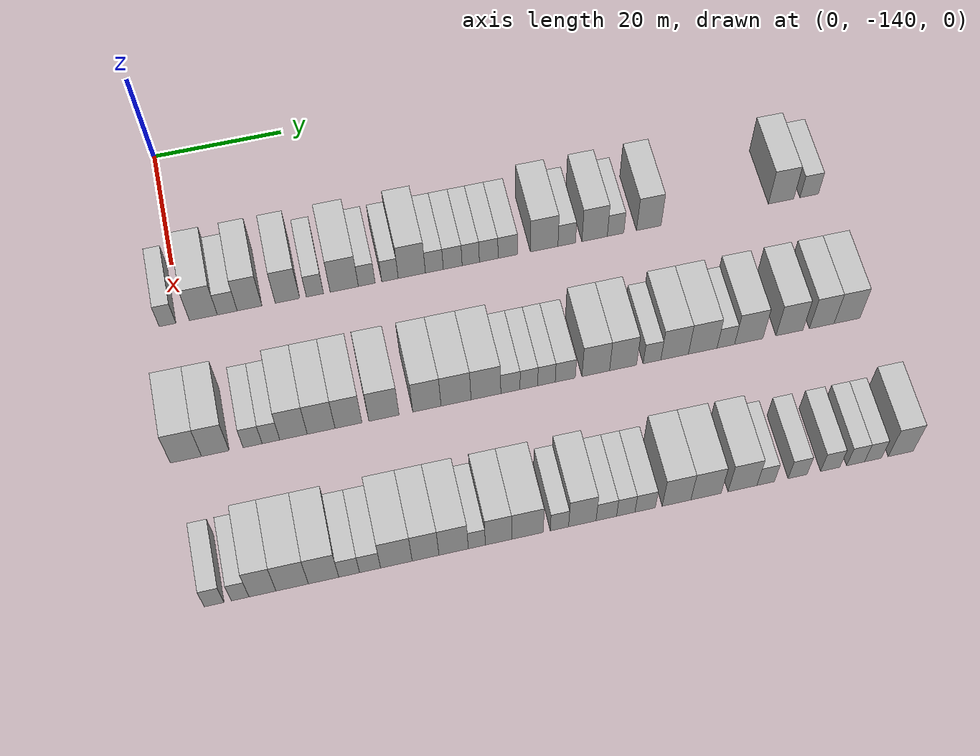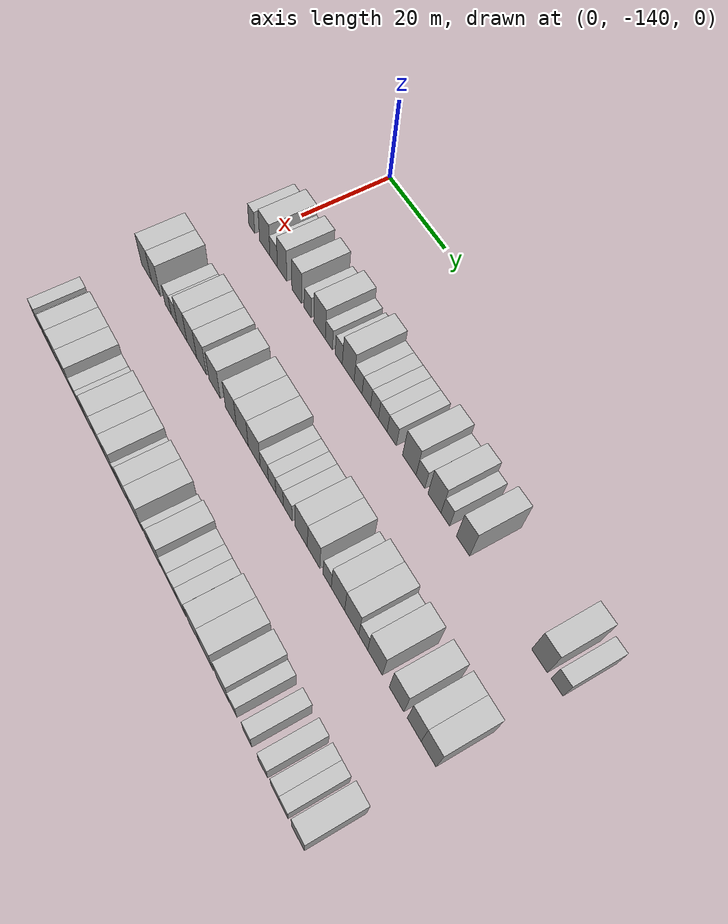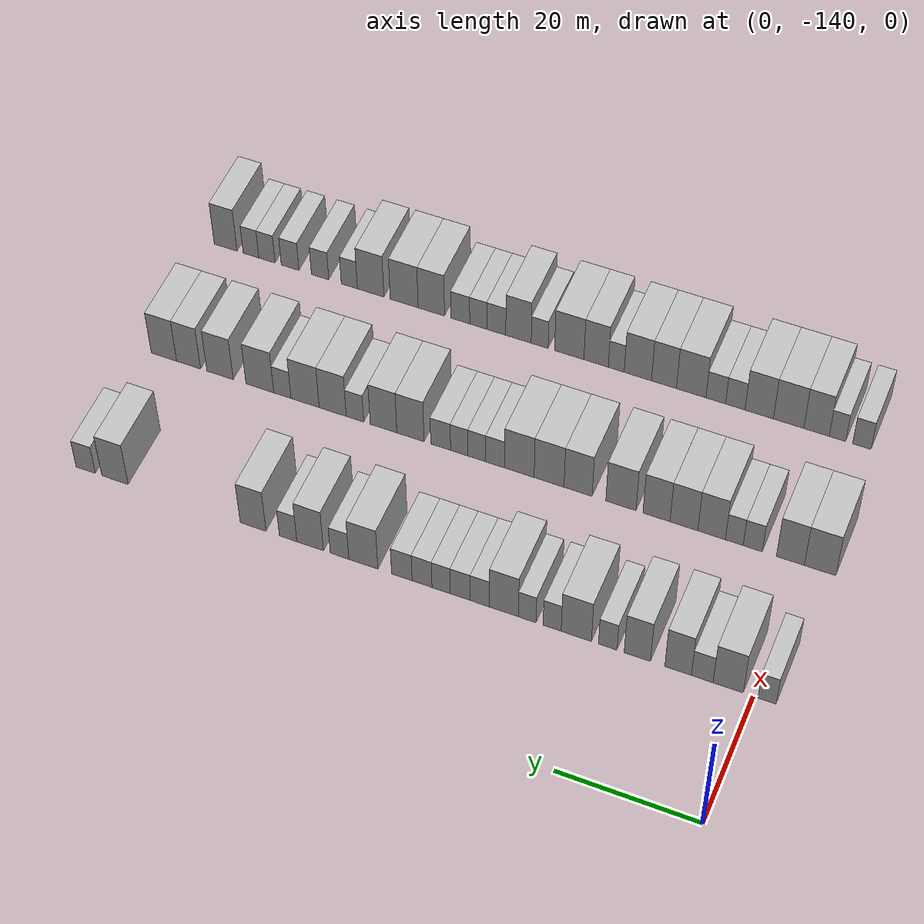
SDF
<sdf version="1.6">
 <world name="default">
  <model name="building_25">
   <static>1</static>
   <pose>25.0000 -141.8379 0 0.000000 0.000000 0.000000</pose>
   <link name="link">
    <pose>0 0 3.00 0 0 0</pose>
    <collision name="collision"><geometry><box><size>10.0000 2.4812 6.0000</size></box></geometry></collision>
    <visual name="visual">
     <cast_shadows>0</cast_shadows>
     <geometry><box><size>10.0000 2.4812 6.0000</size></box></geometry>
     <material>
      <script>
       <uri>model://HANNAS_wall/materials/scripts</uri>
       <uri>model://HANNAS_wall/materials/textures</uri>
       <name>vrc/HANNAS_wall</name>
      </script>
     </material>
    </visual>
   </link>
  </model>
  <model name="building_26">
   <static>1</static>
   <pose>25.0000 -136.5170 0 0.000000 0.000000 0.000000</pose>
   <link name="link">
    <pose>0 0 4.50 0 0 0</pose>
    <collision name="collision"><geometry><box><size>10.0000 4.1606 9.0000</size></box></geometry></collision>
    <visual name="visual">
     <cast_shadows>0</cast_shadows>
     <geometry><box><size>10.0000 4.1606 9.0000</size></box></geometry>
     <material>
      <script>
       <uri>model://HANNAS_wall/materials/scripts</uri>
       <uri>model://HANNAS_wall/materials/textures</uri>
       <name>vrc/HANNAS_wall</name>
      </script>
     </material>
    </visual>
   </link>
  </model>
  <model name="building_27">
   <static>1</static>
   <pose>25.0000 -132.9496 0 0.000000 0.000000 0.000000</pose>
   <link name="link">
    <pose>0 0 3.00 0 0 0</pose>
    <collision name="collision"><geometry><box><size>10.0000 2.9743 6.0000</size></box></geometry></collision>
    <visual name="visual">
     <cast_shadows>0</cast_shadows>
     <geometry><box><size>10.0000 2.9743 6.0000</size></box></geometry>
     <material>
      <script>
       <uri>model://HANNAS_wall/materials/scripts</uri>
       <uri>model://HANNAS_wall/materials/textures</uri>
       <name>vrc/HANNAS_wall</name>
      </script>
     </material>
    </visual>
   </link>
  </model>
  <model name="building_28">
   <static>1</static>
   <pose>25.0000 -129.6148 0 0.000000 0.000000 0.000000</pose>
   <link name="link">
    <pose>0 0 4.50 0 0 0</pose>
    <collision name="collision"><geometry><box><size>10.0000 3.6952 9.0000</size></box></geometry></collision>
    <visual name="visual">
     <cast_shadows>0</cast_shadows>
     <geometry><box><size>10.0000 3.6952 9.0000</size></box></geometry>
     <material>
      <script>
       <uri>model://HANNAS_wall/materials/scripts</uri>
       <uri>model://HANNAS_wall/materials/textures</uri>
       <name>vrc/HANNAS_wall</name>
      </script>
     </material>
    </visual>
   </link>
  </model>
  <model name="building_29">
   <static>1</static>
   <pose>25.0000 -123.9301 0 0.000000 0.000000 0.000000</pose>
   <link name="link">
    <pose>0 0 4.50 0 0 0</pose>
    <collision name="collision"><geometry><box><size>10.0000 3.6742 9.0000</size></box></geometry></collision>
    <visual name="visual">
     <cast_shadows>0</cast_shadows>
     <geometry><box><size>10.0000 3.6742 9.0000</size></box></geometry>
     <material>
      <script>
       <uri>model://HANNAS_wall/materials/scripts</uri>
       <uri>model://HANNAS_wall/materials/textures</uri>
       <name>vrc/HANNAS_wall</name>
      </script>
     </material>
    </visual>
   </link>
  </model>
  <model name="building_30">
   <static>1</static>
   <pose>25.0000 -119.7946 0 0.000000 0.000000 0.000000</pose>
   <link name="link">
    <pose>0 0 3.00 0 0 0</pose>
    <collision name="collision"><geometry><box><size>10.0000 2.5968 6.0000</size></box></geometry></collision>
    <visual name="visual">
     <cast_shadows>0</cast_shadows>
     <geometry><box><size>10.0000 2.5968 6.0000</size></box></geometry>
     <material>
      <script>
       <uri>model://HANNAS_wall/materials/scripts</uri>
       <uri>model://HANNAS_wall/materials/textures</uri>
       <name>vrc/HANNAS_wall</name>
      </script>
     </material>
    </visual>
   </link>
  </model>
  <model name="building_31">
   <static>1</static>
   <pose>25.0000 -115.3570 0 0.000000 0.000000 0.000000</pose>
   <link name="link">
    <pose>0 0 4.50 0 0 0</pose>
    <collision name="collision"><geometry><box><size>10.0000 4.2784 9.0000</size></box></geometry></collision>
    <visual name="visual">
     <cast_shadows>0</cast_shadows>
     <geometry><box><size>10.0000 4.2784 9.0000</size></box></geometry>
     <material>
      <script>
       <uri>model://HANNAS_wall/materials/scripts</uri>
       <uri>model://HANNAS_wall/materials/textures</uri>
       <name>vrc/HANNAS_wall</name>
      </script>
     </material>
    </visual>
   </link>
  </model>
  <model name="building_32">
   <static>1</static>
   <pose>25.0000 -111.9422 0 0.000000 0.000000 0.000000</pose>
   <link name="link">
    <pose>0 0 3.00 0 0 0</pose>
    <collision name="collision"><geometry><box><size>10.0000 2.5513 6.0000</size></box></geometry></collision>
    <visual name="visual">
     <cast_shadows>0</cast_shadows>
     <geometry><box><size>10.0000 2.5513 6.0000</size></box></geometry>
     <material>
      <script>
       <uri>model://HANNAS_wall/materials/scripts</uri>
       <uri>model://HANNAS_wall/materials/textures</uri>
       <name>vrc/HANNAS_wall</name>
      </script>
     </material>
    </visual>
   </link>
  </model>
  <model name="building_33">
   <static>1</static>
   <pose>25.0000 -108.4088 0 0.000000 0.000000 0.000000</pose>
   <link name="link">
    <pose>0 0 3.00 0 0 0</pose>
    <collision name="collision"><geometry><box><size>10.0000 2.5154 6.0000</size></box></geometry></collision>
    <visual name="visual">
     <cast_shadows>0</cast_shadows>
     <geometry><box><size>10.0000 2.5154 6.0000</size></box></geometry>
     <material>
      <script>
       <uri>model://HANNAS_wall/materials/scripts</uri>
       <uri>model://HANNAS_wall/materials/textures</uri>
       <name>vrc/HANNAS_wall</name>
      </script>
     </material>
    </visual>
   </link>
  </model>
  <model name="building_34">
   <static>1</static>
   <pose>25.0000 -105.0760 0 0.000000 0.000000 0.000000</pose>
   <link name="link">
    <pose>0 0 4.50 0 0 0</pose>
    <collision name="collision"><geometry><box><size>10.0000 4.1503 9.0000</size></box></geometry></collision>
    <visual name="visual">
     <cast_shadows>0</cast_shadows>
     <geometry><box><size>10.0000 4.1503 9.0000</size></box></geometry>
     <material>
      <script>
       <uri>model://HANNAS_wall/materials/scripts</uri>
       <uri>model://HANNAS_wall/materials/textures</uri>
       <name>vrc/HANNAS_wall</name>
      </script>
     </material>
    </visual>
   </link>
  </model>
  <model name="building_35">
   <static>1</static>
   <pose>25.0000 -101.6310 0 0.000000 0.000000 0.000000</pose>
   <link name="link">
    <pose>0 0 3.00 0 0 0</pose>
    <collision name="collision"><geometry><box><size>10.0000 2.7396 6.0000</size></box></geometry></collision>
    <visual name="visual">
     <cast_shadows>0</cast_shadows>
     <geometry><box><size>10.0000 2.7396 6.0000</size></box></geometry>
     <material>
      <script>
       <uri>model://HANNAS_wall/materials/scripts</uri>
       <uri>model://HANNAS_wall/materials/textures</uri>
       <name>vrc/HANNAS_wall</name>
      </script>
     </material>
    </visual>
   </link>
  </model>
  <model name="building_36">
   <static>1</static>
   <pose>25.0000 -98.8149 0 0.000000 0.000000 0.000000</pose>
   <link name="link">
    <pose>0 0 3.00 0 0 0</pose>
    <collision name="collision"><geometry><box><size>10.0000 2.8926 6.0000</size></box></geometry></collision>
    <visual name="visual">
     <cast_shadows>0</cast_shadows>
     <geometry><box><size>10.0000 2.8926 6.0000</size></box></geometry>
     <material>
      <script>
       <uri>model://HANNAS_wall/materials/scripts</uri>
       <uri>model://HANNAS_wall/materials/textures</uri>
       <name>vrc/HANNAS_wall</name>
      </script>
     </material>
    </visual>
   </link>
  </model>
  <model name="building_37">
   <static>1</static>
   <pose>25.0000 -96.0426 0 0.000000 0.000000 0.000000</pose>
   <link name="link">
    <pose>0 0 3.00 0 0 0</pose>
    <collision name="collision"><geometry><box><size>10.0000 2.6519 6.0000</size></box></geometry></collision>
    <visual name="visual">
     <cast_shadows>0</cast_shadows>
     <geometry><box><size>10.0000 2.6519 6.0000</size></box></geometry>
     <material>
      <script>
       <uri>model://HANNAS_wall/materials/scripts</uri>
       <uri>model://HANNAS_wall/materials/textures</uri>
       <name>vrc/HANNAS_wall</name>
      </script>
     </material>
    </visual>
   </link>
  </model>
  <model name="building_38">
   <static>1</static>
   <pose>25.0000 -93.2725 0 0.000000 0.000000 0.000000</pose>
   <link name="link">
    <pose>0 0 3.00 0 0 0</pose>
    <collision name="collision"><geometry><box><size>10.0000 2.8883 6.0000</size></box></geometry></collision>
    <visual name="visual">
     <cast_shadows>0</cast_shadows>
     <geometry><box><size>10.0000 2.8883 6.0000</size></box></geometry>
     <material>
      <script>
       <uri>model://HANNAS_wall/materials/scripts</uri>
       <uri>model://HANNAS_wall/materials/textures</uri>
       <name>vrc/HANNAS_wall</name>
      </script>
     </material>
    </visual>
   </link>
  </model>
  <model name="building_39">
   <static>1</static>
   <pose>25.0000 -90.3295 0 0.000000 0.000000 0.000000</pose>
   <link name="link">
    <pose>0 0 3.00 0 0 0</pose>
    <collision name="collision"><geometry><box><size>10.0000 2.9978 6.0000</size></box></geometry></collision>
    <visual name="visual">
     <cast_shadows>0</cast_shadows>
     <geometry><box><size>10.0000 2.9978 6.0000</size></box></geometry>
     <material>
      <script>
       <uri>model://HANNAS_wall/materials/scripts</uri>
       <uri>model://HANNAS_wall/materials/textures</uri>
       <name>vrc/HANNAS_wall</name>
      </script>
     </material>
    </visual>
   </link>
  </model>
  <model name="building_40">
   <static>1</static>
   <pose>25.0000 -84.6927 0 0.000000 0.000000 0.000000</pose>
   <link name="link">
    <pose>0 0 4.50 0 0 0</pose>
    <collision name="collision"><geometry><box><size>10.0000 4.2758 9.0000</size></box></geometry></collision>
    <visual name="visual">
     <cast_shadows>0</cast_shadows>
     <geometry><box><size>10.0000 4.2758 9.0000</size></box></geometry>
     <material>
      <script>
       <uri>model://HANNAS_wall/materials/scripts</uri>
       <uri>model://HANNAS_wall/materials/textures</uri>
       <name>vrc/HANNAS_wall</name>
      </script>
     </material>
    </visual>
   </link>
  </model>
  <model name="building_41">
   <static>1</static>
   <pose>25.0000 -81.1842 0 0.000000 0.000000 0.000000</pose>
   <link name="link">
    <pose>0 0 3.00 0 0 0</pose>
    <collision name="collision"><geometry><box><size>10.0000 2.7412 6.0000</size></box></geometry></collision>
    <visual name="visual">
     <cast_shadows>0</cast_shadows>
     <geometry><box><size>10.0000 2.7412 6.0000</size></box></geometry>
     <material>
      <script>
       <uri>model://HANNAS_wall/materials/scripts</uri>
       <uri>model://HANNAS_wall/materials/textures</uri>
       <name>vrc/HANNAS_wall</name>
      </script>
     </material>
    </visual>
   </link>
  </model>
  <model name="building_42">
   <static>1</static>
   <pose>25.0000 -76.8297 0 0.000000 0.000000 0.000000</pose>
   <link name="link">
    <pose>0 0 4.50 0 0 0</pose>
    <collision name="collision"><geometry><box><size>10.0000 3.9679 9.0000</size></box></geometry></collision>
    <visual name="visual">
     <cast_shadows>0</cast_shadows>
     <geometry><box><size>10.0000 3.9679 9.0000</size></box></geometry>
     <material>
      <script>
       <uri>model://HANNAS_wall/materials/scripts</uri>
       <uri>model://HANNAS_wall/materials/textures</uri>
       <name>vrc/HANNAS_wall</name>
      </script>
     </material>
    </visual>
   </link>
  </model>
  <model name="building_43">
   <static>1</static>
   <pose>25.0000 -73.5482 0 0.000000 0.000000 0.000000</pose>
   <link name="link">
    <pose>0 0 3.00 0 0 0</pose>
    <collision name="collision"><geometry><box><size>10.0000 2.5952 6.0000</size></box></geometry></collision>
    <visual name="visual">
     <cast_shadows>0</cast_shadows>
     <geometry><box><size>10.0000 2.5952 6.0000</size></box></geometry>
     <material>
      <script>
       <uri>model://HANNAS_wall/materials/scripts</uri>
       <uri>model://HANNAS_wall/materials/textures</uri>
       <name>vrc/HANNAS_wall</name>
      </script>
     </material>
    </visual>
   </link>
  </model>
  <model name="building_44">
   <static>1</static>
   <pose>25.0000 -68.3170 0 0.000000 0.000000 0.000000</pose>
   <link name="link">
    <pose>0 0 4.50 0 0 0</pose>
    <collision name="collision"><geometry><box><size>10.0000 3.8673 9.0000</size></box></geometry></collision>
    <visual name="visual">
     <cast_shadows>0</cast_shadows>
     <geometry><box><size>10.0000 3.8673 9.0000</size></box></geometry>
     <material>
      <script>
       <uri>model://HANNAS_wall/materials/scripts</uri>
       <uri>model://HANNAS_wall/materials/textures</uri>
       <name>vrc/HANNAS_wall</name>
      </script>
     </material>
    </visual>
   </link>
  </model>
  <model name="building_45">
   <static>1</static>
   <pose>25.0000 -47.2866 0 0.000000 0.000000 0.000000</pose>
   <link name="link">
    <pose>0 0 4.50 0 0 0</pose>
    <collision name="collision"><geometry><box><size>10.0000 4.0645 9.0000</size></box></geometry></collision>
    <visual name="visual">
     <cast_shadows>0</cast_shadows>
     <geometry><box><size>10.0000 4.0645 9.0000</size></box></geometry>
     <material>
      <script>
       <uri>model://HANNAS_wall/materials/scripts</uri>
       <uri>model://HANNAS_wall/materials/textures</uri>
       <name>vrc/HANNAS_wall</name>
      </script>
     </material>
    </visual>
   </link>
  </model>
  <model name="building_46">
   <static>1</static>
   <pose>25.0000 -42.7664 0 0.000000 0.000000 0.000000</pose>
   <link name="link">
    <pose>0 0 3.00 0 0 0</pose>
    <collision name="collision"><geometry><box><size>10.0000 2.9759 6.0000</size></box></geometry></collision>
    <visual name="visual">
     <cast_shadows>0</cast_shadows>
     <geometry><box><size>10.0000 2.9759 6.0000</size></box></geometry>
     <material>
      <script>
       <uri>model://HANNAS_wall/materials/scripts</uri>
       <uri>model://HANNAS_wall/materials/textures</uri>
       <name>vrc/HANNAS_wall</name>
      </script>
     </material>
    </visual>
   </link>
  </model>
  <model name="building_149">
   <static>1</static>
   <pose>47.0000 -142.1055 0 0.000000 0.000000 0.000000</pose>
   <link name="link">
    <pose>0 0 4.50 0 0 0</pose>
    <collision name="collision"><geometry><box><size>10.0000 4.4430 9.0000</size></box></geometry></collision>
    <visual name="visual">
     <cast_shadows>0</cast_shadows>
     <geometry><box><size>10.0000 4.4430 9.0000</size></box></geometry>
     <material>
      <script>
       <uri>model://HANNAS_wall/materials/scripts</uri>
       <uri>model://HANNAS_wall/materials/textures</uri>
       <name>vrc/HANNAS_wall</name>
      </script>
     </material>
    </visual>
   </link>
  </model>
  <model name="building_150">
   <static>1</static>
   <pose>47.0000 -137.9157 0 0.000000 0.000000 0.000000</pose>
   <link name="link">
    <pose>0 0 4.50 0 0 0</pose>
    <collision name="collision"><geometry><box><size>10.0000 3.9366 9.0000</size></box></geometry></collision>
    <visual name="visual">
     <cast_shadows>0</cast_shadows>
     <geometry><box><size>10.0000 3.9366 9.0000</size></box></geometry>
     <material>
      <script>
       <uri>model://HANNAS_wall/materials/scripts</uri>
       <uri>model://HANNAS_wall/materials/textures</uri>
       <name>vrc/HANNAS_wall</name>
      </script>
     </material>
    </visual>
   </link>
  </model>
  <model name="building_151">
   <static>1</static>
   <pose>47.0000 -132.5863 0 0.000000 0.000000 0.000000</pose>
   <link name="link">
    <pose>0 0 3.00 0 0 0</pose>
    <collision name="collision"><geometry><box><size>10.0000 2.7222 6.0000</size></box></geometry></collision>
    <visual name="visual">
     <cast_shadows>0</cast_shadows>
     <geometry><box><size>10.0000 2.7222 6.0000</size></box></geometry>
     <material>
      <script>
       <uri>model://HANNAS_wall/materials/scripts</uri>
       <uri>model://HANNAS_wall/materials/textures</uri>
       <name>vrc/HANNAS_wall</name>
      </script>
     </material>
    </visual>
   </link>
  </model>
  <model name="building_152">
   <static>1</static>
   <pose>47.0000 -129.9509 0 0.000000 0.000000 0.000000</pose>
   <link name="link">
    <pose>0 0 3.00 0 0 0</pose>
    <collision name="collision"><geometry><box><size>10.0000 2.5488 6.0000</size></box></geometry></collision>
    <visual name="visual">
     <cast_shadows>0</cast_shadows>
     <geometry><box><size>10.0000 2.5488 6.0000</size></box></geometry>
     <material>
      <script>
       <uri>model://HANNAS_wall/materials/scripts</uri>
       <uri>model://HANNAS_wall/materials/textures</uri>
       <name>vrc/HANNAS_wall</name>
      </script>
     </material>
    </visual>
   </link>
  </model>
  <model name="building_153">
   <static>1</static>
   <pose>47.0000 -126.6948 0 0.000000 0.000000 0.000000</pose>
   <link name="link">
    <pose>0 0 4.50 0 0 0</pose>
    <collision name="collision"><geometry><box><size>10.0000 3.9633 9.0000</size></box></geometry></collision>
    <visual name="visual">
     <cast_shadows>0</cast_shadows>
     <geometry><box><size>10.0000 3.9633 9.0000</size></box></geometry>
     <material>
      <script>
       <uri>model://HANNAS_wall/materials/scripts</uri>
       <uri>model://HANNAS_wall/materials/textures</uri>
       <name>vrc/HANNAS_wall</name>
      </script>
     </material>
    </visual>
   </link>
  </model>
  <model name="building_154">
   <static>1</static>
   <pose>47.0000 -122.7037 0 0.000000 0.000000 0.000000</pose>
   <link name="link">
    <pose>0 0 4.50 0 0 0</pose>
    <collision name="collision"><geometry><box><size>10.0000 4.0189 9.0000</size></box></geometry></collision>
    <visual name="visual">
     <cast_shadows>0</cast_shadows>
     <geometry><box><size>10.0000 4.0189 9.0000</size></box></geometry>
     <material>
      <script>
       <uri>model://HANNAS_wall/materials/scripts</uri>
       <uri>model://HANNAS_wall/materials/textures</uri>
       <name>vrc/HANNAS_wall</name>
      </script>
     </material>
    </visual>
   </link>
  </model>
  <model name="building_155">
   <static>1</static>
   <pose>47.0000 -118.7387 0 0.000000 0.000000 0.000000</pose>
   <link name="link">
    <pose>0 0 4.50 0 0 0</pose>
    <collision name="collision"><geometry><box><size>10.0000 3.9110 9.0000</size></box></geometry></collision>
    <visual name="visual">
     <cast_shadows>0</cast_shadows>
     <geometry><box><size>10.0000 3.9110 9.0000</size></box></geometry>
     <material>
      <script>
       <uri>model://HANNAS_wall/materials/scripts</uri>
       <uri>model://HANNAS_wall/materials/textures</uri>
       <name>vrc/HANNAS_wall</name>
      </script>
     </material>
    </visual>
   </link>
  </model>
  <model name="building_156">
   <static>1</static>
   <pose>47.0000 -113.5774 0 0.000000 0.000000 0.000000</pose>
   <link name="link">
    <pose>0 0 4.50 0 0 0</pose>
    <collision name="collision"><geometry><box><size>10.0000 4.4116 9.0000</size></box></geometry></collision>
    <visual name="visual">
     <cast_shadows>0</cast_shadows>
     <geometry><box><size>10.0000 4.4116 9.0000</size></box></geometry>
     <material>
      <script>
       <uri>model://HANNAS_wall/materials/scripts</uri>
       <uri>model://HANNAS_wall/materials/textures</uri>
       <name>vrc/HANNAS_wall</name>
      </script>
     </material>
    </visual>
   </link>
  </model>
  <model name="building_157">
   <static>1</static>
   <pose>47.0000 -107.2994 0 0.000000 0.000000 0.000000</pose>
   <link name="link">
    <pose>0 0 4.50 0 0 0</pose>
    <collision name="collision"><geometry><box><size>10.0000 4.1445 9.0000</size></box></geometry></collision>
    <visual name="visual">
     <cast_shadows>0</cast_shadows>
     <geometry><box><size>10.0000 4.1445 9.0000</size></box></geometry>
     <material>
      <script>
       <uri>model://HANNAS_wall/materials/scripts</uri>
       <uri>model://HANNAS_wall/materials/textures</uri>
       <name>vrc/HANNAS_wall</name>
      </script>
     </material>
    </visual>
   </link>
  </model>
  <model name="building_158">
   <static>1</static>
   <pose>47.0000 -103.0187 0 0.000000 0.000000 0.000000</pose>
   <link name="link">
    <pose>0 0 4.50 0 0 0</pose>
    <collision name="collision"><geometry><box><size>10.0000 4.4167 9.0000</size></box></geometry></collision>
    <visual name="visual">
     <cast_shadows>0</cast_shadows>
     <geometry><box><size>10.0000 4.4167 9.0000</size></box></geometry>
     <material>
      <script>
       <uri>model://HANNAS_wall/materials/scripts</uri>
       <uri>model://HANNAS_wall/materials/textures</uri>
       <name>vrc/HANNAS_wall</name>
      </script>
     </material>
    </visual>
   </link>
  </model>
  <model name="building_159">
   <static>1</static>
   <pose>47.0000 -98.6092 0 0.000000 0.000000 0.000000</pose>
   <link name="link">
    <pose>0 0 4.50 0 0 0</pose>
    <collision name="collision"><geometry><box><size>10.0000 4.4024 9.0000</size></box></geometry></collision>
    <visual name="visual">
     <cast_shadows>0</cast_shadows>
     <geometry><box><size>10.0000 4.4024 9.0000</size></box></geometry>
     <material>
      <script>
       <uri>model://HANNAS_wall/materials/scripts</uri>
       <uri>model://HANNAS_wall/materials/textures</uri>
       <name>vrc/HANNAS_wall</name>
      </script>
     </material>
    </visual>
   </link>
  </model>
  <model name="building_160">
   <static>1</static>
   <pose>47.0000 -94.9828 0 0.000000 0.000000 0.000000</pose>
   <link name="link">
    <pose>0 0 3.00 0 0 0</pose>
    <collision name="collision"><geometry><box><size>10.0000 2.8505 6.0000</size></box></geometry></collision>
    <visual name="visual">
     <cast_shadows>0</cast_shadows>
     <geometry><box><size>10.0000 2.8505 6.0000</size></box></geometry>
     <material>
      <script>
       <uri>model://HANNAS_wall/materials/scripts</uri>
       <uri>model://HANNAS_wall/materials/textures</uri>
       <name>vrc/HANNAS_wall</name>
      </script>
     </material>
    </visual>
   </link>
  </model>
  <model name="building_161">
   <static>1</static>
   <pose>47.0000 -92.2448 0 0.000000 0.000000 0.000000</pose>
   <link name="link">
    <pose>0 0 3.00 0 0 0</pose>
    <collision name="collision"><geometry><box><size>10.0000 2.6254 6.0000</size></box></geometry></collision>
    <visual name="visual">
     <cast_shadows>0</cast_shadows>
     <geometry><box><size>10.0000 2.6254 6.0000</size></box></geometry>
     <material>
      <script>
       <uri>model://HANNAS_wall/materials/scripts</uri>
       <uri>model://HANNAS_wall/materials/textures</uri>
       <name>vrc/HANNAS_wall</name>
      </script>
     </material>
    </visual>
   </link>
  </model>
  <model name="building_162">
   <static>1</static>
   <pose>47.0000 -89.6298 0 0.000000 0.000000 0.000000</pose>
   <link name="link">
    <pose>0 0 3.00 0 0 0</pose>
    <collision name="collision"><geometry><box><size>10.0000 2.6048 6.0000</size></box></geometry></collision>
    <visual name="visual">
     <cast_shadows>0</cast_shadows>
     <geometry><box><size>10.0000 2.6048 6.0000</size></box></geometry>
     <material>
      <script>
       <uri>model://HANNAS_wall/materials/scripts</uri>
       <uri>model://HANNAS_wall/materials/textures</uri>
       <name>vrc/HANNAS_wall</name>
      </script>
     </material>
    </visual>
   </link>
  </model>
  <model name="building_163">
   <static>1</static>
   <pose>47.0000 -86.8279 0 0.000000 0.000000 0.000000</pose>
   <link name="link">
    <pose>0 0 3.00 0 0 0</pose>
    <collision name="collision"><geometry><box><size>10.0000 2.9989 6.0000</size></box></geometry></collision>
    <visual name="visual">
     <cast_shadows>0</cast_shadows>
     <geometry><box><size>10.0000 2.9989 6.0000</size></box></geometry>
     <material>
      <script>
       <uri>model://HANNAS_wall/materials/scripts</uri>
       <uri>model://HANNAS_wall/materials/textures</uri>
       <name>vrc/HANNAS_wall</name>
      </script>
     </material>
    </visual>
   </link>
  </model>
  <model name="building_164">
   <static>1</static>
   <pose>47.0000 -82.2608 0 0.000000 0.000000 0.000000</pose>
   <link name="link">
    <pose>0 0 4.50 0 0 0</pose>
    <collision name="collision"><geometry><box><size>10.0000 4.1354 9.0000</size></box></geometry></collision>
    <visual name="visual">
     <cast_shadows>0</cast_shadows>
     <geometry><box><size>10.0000 4.1354 9.0000</size></box></geometry>
     <material>
      <script>
       <uri>model://HANNAS_wall/materials/scripts</uri>
       <uri>model://HANNAS_wall/materials/textures</uri>
       <name>vrc/HANNAS_wall</name>
      </script>
     </material>
    </visual>
   </link>
  </model>
  <model name="building_165">
   <static>1</static>
   <pose>47.0000 -78.1626 0 0.000000 0.000000 0.000000</pose>
   <link name="link">
    <pose>0 0 4.50 0 0 0</pose>
    <collision name="collision"><geometry><box><size>10.0000 4.0608 9.0000</size></box></geometry></collision>
    <visual name="visual">
     <cast_shadows>0</cast_shadows>
     <geometry><box><size>10.0000 4.0608 9.0000</size></box></geometry>
     <material>
      <script>
       <uri>model://HANNAS_wall/materials/scripts</uri>
       <uri>model://HANNAS_wall/materials/textures</uri>
       <name>vrc/HANNAS_wall</name>
      </script>
     </material>
    </visual>
   </link>
  </model>
  <model name="building_166">
   <static>1</static>
   <pose>47.0000 -73.7950 0 0.000000 0.000000 0.000000</pose>
   <link name="link">
    <pose>0 0 3.00 0 0 0</pose>
    <collision name="collision"><geometry><box><size>10.0000 2.6744 6.0000</size></box></geometry></collision>
    <visual name="visual">
     <cast_shadows>0</cast_shadows>
     <geometry><box><size>10.0000 2.6744 6.0000</size></box></geometry>
     <material>
      <script>
       <uri>model://HANNAS_wall/materials/scripts</uri>
       <uri>model://HANNAS_wall/materials/textures</uri>
       <name>vrc/HANNAS_wall</name>
      </script>
     </material>
    </visual>
   </link>
  </model>
  <model name="building_167">
   <static>1</static>
   <pose>47.0000 -70.3736 0 0.000000 0.000000 0.000000</pose>
   <link name="link">
    <pose>0 0 4.50 0 0 0</pose>
    <collision name="collision"><geometry><box><size>10.0000 4.1684 9.0000</size></box></geometry></collision>
    <visual name="visual">
     <cast_shadows>0</cast_shadows>
     <geometry><box><size>10.0000 4.1684 9.0000</size></box></geometry>
     <material>
      <script>
       <uri>model://HANNAS_wall/materials/scripts</uri>
       <uri>model://HANNAS_wall/materials/textures</uri>
       <name>vrc/HANNAS_wall</name>
      </script>
     </material>
    </visual>
   </link>
  </model>
  <model name="building_168">
   <static>1</static>
   <pose>47.0000 -66.1090 0 0.000000 0.000000 0.000000</pose>
   <link name="link">
    <pose>0 0 4.50 0 0 0</pose>
    <collision name="collision"><geometry><box><size>10.0000 4.3608 9.0000</size></box></geometry></collision>
    <visual name="visual">
     <cast_shadows>0</cast_shadows>
     <geometry><box><size>10.0000 4.3608 9.0000</size></box></geometry>
     <material>
      <script>
       <uri>model://HANNAS_wall/materials/scripts</uri>
       <uri>model://HANNAS_wall/materials/textures</uri>
       <name>vrc/HANNAS_wall</name>
      </script>
     </material>
    </visual>
   </link>
  </model>
  <model name="building_169">
   <static>1</static>
   <pose>47.0000 -62.5889 0 0.000000 0.000000 0.000000</pose>
   <link name="link">
    <pose>0 0 3.00 0 0 0</pose>
    <collision name="collision"><geometry><box><size>10.0000 2.6794 6.0000</size></box></geometry></collision>
    <visual name="visual">
     <cast_shadows>0</cast_shadows>
     <geometry><box><size>10.0000 2.6794 6.0000</size></box></geometry>
     <material>
      <script>
       <uri>model://HANNAS_wall/materials/scripts</uri>
       <uri>model://HANNAS_wall/materials/textures</uri>
       <name>vrc/HANNAS_wall</name>
      </script>
     </material>
    </visual>
   </link>
  </model>
  <model name="building_170">
   <static>1</static>
   <pose>47.0000 -59.0831 0 0.000000 0.000000 0.000000</pose>
   <link name="link">
    <pose>0 0 4.50 0 0 0</pose>
    <collision name="collision"><geometry><box><size>10.0000 4.3322 9.0000</size></box></geometry></collision>
    <visual name="visual">
     <cast_shadows>0</cast_shadows>
     <geometry><box><size>10.0000 4.3322 9.0000</size></box></geometry>
     <material>
      <script>
       <uri>model://HANNAS_wall/materials/scripts</uri>
       <uri>model://HANNAS_wall/materials/textures</uri>
       <name>vrc/HANNAS_wall</name>
      </script>
     </material>
    </visual>
   </link>
  </model>
  <model name="building_171">
   <static>1</static>
   <pose>47.0000 -52.8449 0 0.000000 0.000000 0.000000</pose>
   <link name="link">
    <pose>0 0 4.50 0 0 0</pose>
    <collision name="collision"><geometry><box><size>10.0000 4.1442 9.0000</size></box></geometry></collision>
    <visual name="visual">
     <cast_shadows>0</cast_shadows>
     <geometry><box><size>10.0000 4.1442 9.0000</size></box></geometry>
     <material>
      <script>
       <uri>model://HANNAS_wall/materials/scripts</uri>
       <uri>model://HANNAS_wall/materials/textures</uri>
       <name>vrc/HANNAS_wall</name>
      </script>
     </material>
    </visual>
   </link>
  </model>
  <model name="building_172">
   <static>1</static>
   <pose>47.0000 -47.8678 0 0.000000 0.000000 0.000000</pose>
   <link name="link">
    <pose>0 0 4.50 0 0 0</pose>
    <collision name="collision"><geometry><box><size>10.0000 3.8100 9.0000</size></box></geometry></collision>
    <visual name="visual">
     <cast_shadows>0</cast_shadows>
     <geometry><box><size>10.0000 3.8100 9.0000</size></box></geometry>
     <material>
      <script>
       <uri>model://HANNAS_wall/materials/scripts</uri>
       <uri>model://HANNAS_wall/materials/textures</uri>
       <name>vrc/HANNAS_wall</name>
      </script>
     </material>
    </visual>
   </link>
  </model>
  <model name="building_173">
   <static>1</static>
   <pose>47.0000 -43.9527 0 0.000000 0.000000 0.000000</pose>
   <link name="link">
    <pose>0 0 4.50 0 0 0</pose>
    <collision name="collision"><geometry><box><size>10.0000 4.0202 9.0000</size></box></geometry></collision>
    <visual name="visual">
     <cast_shadows>0</cast_shadows>
     <geometry><box><size>10.0000 4.0202 9.0000</size></box></geometry>
     <material>
      <script>
       <uri>model://HANNAS_wall/materials/scripts</uri>
       <uri>model://HANNAS_wall/materials/textures</uri>
       <name>vrc/HANNAS_wall</name>
      </script>
     </material>
    </visual>
   </link>
  </model>
  <model name="building_269">
   <static>1</static>
   <pose>69.0000 -141.2710 0 0.000000 0.000000 0.000000</pose>
   <link name="link">
    <pose>0 0 3.00 0 0 0</pose>
    <collision name="collision"><geometry><box><size>10.0000 2.6872 6.0000</size></box></geometry></collision>
    <visual name="visual">
     <cast_shadows>0</cast_shadows>
     <geometry><box><size>10.0000 2.6872 6.0000</size></box></geometry>
     <material>
      <script>
       <uri>model://HANNAS_wall/materials/scripts</uri>
       <uri>model://HANNAS_wall/materials/textures</uri>
       <name>vrc/HANNAS_wall</name>
      </script>
     </material>
    </visual>
   </link>
  </model>
  <model name="building_270">
   <static>1</static>
   <pose>69.0000 -137.7154 0 0.000000 0.000000 0.000000</pose>
   <link name="link">
    <pose>0 0 3.00 0 0 0</pose>
    <collision name="collision"><geometry><box><size>10.0000 2.4240 6.0000</size></box></geometry></collision>
    <visual name="visual">
     <cast_shadows>0</cast_shadows>
     <geometry><box><size>10.0000 2.4240 6.0000</size></box></geometry>
     <material>
      <script>
       <uri>model://HANNAS_wall/materials/scripts</uri>
       <uri>model://HANNAS_wall/materials/textures</uri>
       <name>vrc/HANNAS_wall</name>
      </script>
     </material>
    </visual>
   </link>
  </model>
  <model name="building_271">
   <static>1</static>
   <pose>69.0000 -134.6511 0 0.000000 0.000000 0.000000</pose>
   <link name="link">
    <pose>0 0 4.50 0 0 0</pose>
    <collision name="collision"><geometry><box><size>10.0000 3.7046 9.0000</size></box></geometry></collision>
    <visual name="visual">
     <cast_shadows>0</cast_shadows>
     <geometry><box><size>10.0000 3.7046 9.0000</size></box></geometry>
     <material>
      <script>
       <uri>model://HANNAS_wall/materials/scripts</uri>
       <uri>model://HANNAS_wall/materials/textures</uri>
       <name>vrc/HANNAS_wall</name>
      </script>
     </material>
    </visual>
   </link>
  </model>
  <model name="building_272">
   <static>1</static>
   <pose>69.0000 -130.5645 0 0.000000 0.000000 0.000000</pose>
   <link name="link">
    <pose>0 0 4.50 0 0 0</pose>
    <collision name="collision"><geometry><box><size>10.0000 4.4686 9.0000</size></box></geometry></collision>
    <visual name="visual">
     <cast_shadows>0</cast_shadows>
     <geometry><box><size>10.0000 4.4686 9.0000</size></box></geometry>
     <material>
      <script>
       <uri>model://HANNAS_wall/materials/scripts</uri>
       <uri>model://HANNAS_wall/materials/textures</uri>
       <name>vrc/HANNAS_wall</name>
      </script>
     </material>
    </visual>
   </link>
  </model>
  <model name="building_273">
   <static>1</static>
   <pose>69.0000 -126.2250 0 0.000000 0.000000 0.000000</pose>
   <link name="link">
    <pose>0 0 4.50 0 0 0</pose>
    <collision name="collision"><geometry><box><size>10.0000 4.2104 9.0000</size></box></geometry></collision>
    <visual name="visual">
     <cast_shadows>0</cast_shadows>
     <geometry><box><size>10.0000 4.2104 9.0000</size></box></geometry>
     <material>
      <script>
       <uri>model://HANNAS_wall/materials/scripts</uri>
       <uri>model://HANNAS_wall/materials/textures</uri>
       <name>vrc/HANNAS_wall</name>
      </script>
     </material>
    </visual>
   </link>
  </model>
  <model name="building_274">
   <static>1</static>
   <pose>69.0000 -122.6781 0 0.000000 0.000000 0.000000</pose>
   <link name="link">
    <pose>0 0 3.00 0 0 0</pose>
    <collision name="collision"><geometry><box><size>10.0000 2.8834 6.0000</size></box></geometry></collision>
    <visual name="visual">
     <cast_shadows>0</cast_shadows>
     <geometry><box><size>10.0000 2.8834 6.0000</size></box></geometry>
     <material>
      <script>
       <uri>model://HANNAS_wall/materials/scripts</uri>
       <uri>model://HANNAS_wall/materials/textures</uri>
       <name>vrc/HANNAS_wall</name>
      </script>
     </material>
    </visual>
   </link>
  </model>
  <model name="building_275">
   <static>1</static>
   <pose>69.0000 -119.7724 0 0.000000 0.000000 0.000000</pose>
   <link name="link">
    <pose>0 0 3.00 0 0 0</pose>
    <collision name="collision"><geometry><box><size>10.0000 2.9279 6.0000</size></box></geometry></collision>
    <visual name="visual">
     <cast_shadows>0</cast_shadows>
     <geometry><box><size>10.0000 2.9279 6.0000</size></box></geometry>
     <material>
      <script>
       <uri>model://HANNAS_wall/materials/scripts</uri>
       <uri>model://HANNAS_wall/materials/textures</uri>
       <name>vrc/HANNAS_wall</name>
      </script>
     </material>
    </visual>
   </link>
  </model>
  <model name="building_276">
   <static>1</static>
   <pose>69.0000 -116.1000 0 0.000000 0.000000 0.000000</pose>
   <link name="link">
    <pose>0 0 4.50 0 0 0</pose>
    <collision name="collision"><geometry><box><size>10.0000 4.4168 9.0000</size></box></geometry></collision>
    <visual name="visual">
     <cast_shadows>0</cast_shadows>
     <geometry><box><size>10.0000 4.4168 9.0000</size></box></geometry>
     <material>
      <script>
       <uri>model://HANNAS_wall/materials/scripts</uri>
       <uri>model://HANNAS_wall/materials/textures</uri>
       <name>vrc/HANNAS_wall</name>
      </script>
     </material>
    </visual>
   </link>
  </model>
  <model name="building_277">
   <static>1</static>
   <pose>69.0000 -112.0136 0 0.000000 0.000000 0.000000</pose>
   <link name="link">
    <pose>0 0 4.50 0 0 0</pose>
    <collision name="collision"><geometry><box><size>10.0000 3.7561 9.0000</size></box></geometry></collision>
    <visual name="visual">
     <cast_shadows>0</cast_shadows>
     <geometry><box><size>10.0000 3.7561 9.0000</size></box></geometry>
     <material>
      <script>
       <uri>model://HANNAS_wall/materials/scripts</uri>
       <uri>model://HANNAS_wall/materials/textures</uri>
       <name>vrc/HANNAS_wall</name>
      </script>
     </material>
    </visual>
   </link>
  </model>
  <model name="building_278">
   <static>1</static>
   <pose>69.0000 -108.0708 0 0.000000 0.000000 0.000000</pose>
   <link name="link">
    <pose>0 0 4.50 0 0 0</pose>
    <collision name="collision"><geometry><box><size>10.0000 4.1295 9.0000</size></box></geometry></collision>
    <visual name="visual">
     <cast_shadows>0</cast_shadows>
     <geometry><box><size>10.0000 4.1295 9.0000</size></box></geometry>
     <material>
      <script>
       <uri>model://HANNAS_wall/materials/scripts</uri>
       <uri>model://HANNAS_wall/materials/textures</uri>
       <name>vrc/HANNAS_wall</name>
      </script>
     </material>
    </visual>
   </link>
  </model>
  <model name="building_279">
   <static>1</static>
   <pose>69.0000 -104.8007 0 0.000000 0.000000 0.000000</pose>
   <link name="link">
    <pose>0 0 3.00 0 0 0</pose>
    <collision name="collision"><geometry><box><size>10.0000 2.4106 6.0000</size></box></geometry></collision>
    <visual name="visual">
     <cast_shadows>0</cast_shadows>
     <geometry><box><size>10.0000 2.4106 6.0000</size></box></geometry>
     <material>
      <script>
       <uri>model://HANNAS_wall/materials/scripts</uri>
       <uri>model://HANNAS_wall/materials/textures</uri>
       <name>vrc/HANNAS_wall</name>
      </script>
     </material>
    </visual>
   </link>
  </model>
  <model name="building_280">
   <static>1</static>
   <pose>69.0000 -101.7340 0 0.000000 0.000000 0.000000</pose>
   <link name="link">
    <pose>0 0 4.50 0 0 0</pose>
    <collision name="collision"><geometry><box><size>10.0000 3.7230 9.0000</size></box></geometry></collision>
    <visual name="visual">
     <cast_shadows>0</cast_shadows>
     <geometry><box><size>10.0000 3.7230 9.0000</size></box></geometry>
     <material>
      <script>
       <uri>model://HANNAS_wall/materials/scripts</uri>
       <uri>model://HANNAS_wall/materials/textures</uri>
       <name>vrc/HANNAS_wall</name>
      </script>
     </material>
    </visual>
   </link>
  </model>
  <model name="building_281">
   <static>1</static>
   <pose>69.0000 -97.6282 0 0.000000 0.000000 0.000000</pose>
   <link name="link">
    <pose>0 0 4.50 0 0 0</pose>
    <collision name="collision"><geometry><box><size>10.0000 4.4885 9.0000</size></box></geometry></collision>
    <visual name="visual">
     <cast_shadows>0</cast_shadows>
     <geometry><box><size>10.0000 4.4885 9.0000</size></box></geometry>
     <material>
      <script>
       <uri>model://HANNAS_wall/materials/scripts</uri>
       <uri>model://HANNAS_wall/materials/textures</uri>
       <name>vrc/HANNAS_wall</name>
      </script>
     </material>
    </visual>
   </link>
  </model>
  <model name="building_282">
   <static>1</static>
   <pose>69.0000 -93.0807 0 0.000000 0.000000 0.000000</pose>
   <link name="link">
    <pose>0 0 3.00 0 0 0</pose>
    <collision name="collision"><geometry><box><size>10.0000 2.6065 6.0000</size></box></geometry></collision>
    <visual name="visual">
     <cast_shadows>0</cast_shadows>
     <geometry><box><size>10.0000 2.6065 6.0000</size></box></geometry>
     <material>
      <script>
       <uri>model://HANNAS_wall/materials/scripts</uri>
       <uri>model://HANNAS_wall/materials/textures</uri>
       <name>vrc/HANNAS_wall</name>
      </script>
     </material>
    </visual>
   </link>
  </model>
  <model name="building_283">
   <static>1</static>
   <pose>69.0000 -89.8103 0 0.000000 0.000000 0.000000</pose>
   <link name="link">
    <pose>0 0 4.50 0 0 0</pose>
    <collision name="collision"><geometry><box><size>10.0000 3.9342 9.0000</size></box></geometry></collision>
    <visual name="visual">
     <cast_shadows>0</cast_shadows>
     <geometry><box><size>10.0000 3.9342 9.0000</size></box></geometry>
     <material>
      <script>
       <uri>model://HANNAS_wall/materials/scripts</uri>
       <uri>model://HANNAS_wall/materials/textures</uri>
       <name>vrc/HANNAS_wall</name>
      </script>
     </material>
    </visual>
   </link>
  </model>
  <model name="building_284">
   <static>1</static>
   <pose>69.0000 -86.3696 0 0.000000 0.000000 0.000000</pose>
   <link name="link">
    <pose>0 0 3.00 0 0 0</pose>
    <collision name="collision"><geometry><box><size>10.0000 2.9473 6.0000</size></box></geometry></collision>
    <visual name="visual">
     <cast_shadows>0</cast_shadows>
     <geometry><box><size>10.0000 2.9473 6.0000</size></box></geometry>
     <material>
      <script>
       <uri>model://HANNAS_wall/materials/scripts</uri>
       <uri>model://HANNAS_wall/materials/textures</uri>
       <name>vrc/HANNAS_wall</name>
      </script>
     </material>
    </visual>
   </link>
  </model>
  <model name="building_285">
   <static>1</static>
   <pose>69.0000 -83.5728 0 0.000000 0.000000 0.000000</pose>
   <link name="link">
    <pose>0 0 3.00 0 0 0</pose>
    <collision name="collision"><geometry><box><size>10.0000 2.6464 6.0000</size></box></geometry></collision>
    <visual name="visual">
     <cast_shadows>0</cast_shadows>
     <geometry><box><size>10.0000 2.6464 6.0000</size></box></geometry>
     <material>
      <script>
       <uri>model://HANNAS_wall/materials/scripts</uri>
       <uri>model://HANNAS_wall/materials/textures</uri>
       <name>vrc/HANNAS_wall</name>
      </script>
     </material>
    </visual>
   </link>
  </model>
  <model name="building_286">
   <static>1</static>
   <pose>69.0000 -80.7788 0 0.000000 0.000000 0.000000</pose>
   <link name="link">
    <pose>0 0 3.00 0 0 0</pose>
    <collision name="collision"><geometry><box><size>10.0000 2.9415 6.0000</size></box></geometry></collision>
    <visual name="visual">
     <cast_shadows>0</cast_shadows>
     <geometry><box><size>10.0000 2.9415 6.0000</size></box></geometry>
     <material>
      <script>
       <uri>model://HANNAS_wall/materials/scripts</uri>
       <uri>model://HANNAS_wall/materials/textures</uri>
       <name>vrc/HANNAS_wall</name>
      </script>
     </material>
    </visual>
   </link>
  </model>
  <model name="building_287">
   <static>1</static>
   <pose>69.0000 -76.2319 0 0.000000 0.000000 0.000000</pose>
   <link name="link">
    <pose>0 0 4.50 0 0 0</pose>
    <collision name="collision"><geometry><box><size>10.0000 4.1522 9.0000</size></box></geometry></collision>
    <visual name="visual">
     <cast_shadows>0</cast_shadows>
     <geometry><box><size>10.0000 4.1522 9.0000</size></box></geometry>
     <material>
      <script>
       <uri>model://HANNAS_wall/materials/scripts</uri>
       <uri>model://HANNAS_wall/materials/textures</uri>
       <name>vrc/HANNAS_wall</name>
      </script>
     </material>
    </visual>
   </link>
  </model>
  <model name="building_288">
   <static>1</static>
   <pose>69.0000 -71.9514 0 0.000000 0.000000 0.000000</pose>
   <link name="link">
    <pose>0 0 4.50 0 0 0</pose>
    <collision name="collision"><geometry><box><size>10.0000 4.4089 9.0000</size></box></geometry></collision>
    <visual name="visual">
     <cast_shadows>0</cast_shadows>
     <geometry><box><size>10.0000 4.4089 9.0000</size></box></geometry>
     <material>
      <script>
       <uri>model://HANNAS_wall/materials/scripts</uri>
       <uri>model://HANNAS_wall/materials/textures</uri>
       <name>vrc/HANNAS_wall</name>
      </script>
     </material>
    </visual>
   </link>
  </model>
  <model name="building_289">
   <static>1</static>
   <pose>69.0000 -66.6377 0 0.000000 0.000000 0.000000</pose>
   <link name="link">
    <pose>0 0 4.50 0 0 0</pose>
    <collision name="collision"><geometry><box><size>10.0000 4.2185 9.0000</size></box></geometry></collision>
    <visual name="visual">
     <cast_shadows>0</cast_shadows>
     <geometry><box><size>10.0000 4.2185 9.0000</size></box></geometry>
     <material>
      <script>
       <uri>model://HANNAS_wall/materials/scripts</uri>
       <uri>model://HANNAS_wall/materials/textures</uri>
       <name>vrc/HANNAS_wall</name>
      </script>
     </material>
    </visual>
   </link>
  </model>
  <model name="building_290">
   <static>1</static>
   <pose>69.0000 -63.2384 0 0.000000 0.000000 0.000000</pose>
   <link name="link">
    <pose>0 0 3.00 0 0 0</pose>
    <collision name="collision"><geometry><box><size>10.0000 2.5801 6.0000</size></box></geometry></collision>
    <visual name="visual">
     <cast_shadows>0</cast_shadows>
     <geometry><box><size>10.0000 2.5801 6.0000</size></box></geometry>
     <material>
      <script>
       <uri>model://HANNAS_wall/materials/scripts</uri>
       <uri>model://HANNAS_wall/materials/textures</uri>
       <name>vrc/HANNAS_wall</name>
      </script>
     </material>
    </visual>
   </link>
  </model>
  <model name="building_291">
   <static>1</static>
   <pose>69.0000 -58.5522 0 0.000000 0.000000 0.000000</pose>
   <link name="link">
    <pose>0 0 3.00 0 0 0</pose>
    <collision name="collision"><geometry><box><size>10.0000 2.7923 6.0000</size></box></geometry></collision>
    <visual name="visual">
     <cast_shadows>0</cast_shadows>
     <geometry><box><size>10.0000 2.7923 6.0000</size></box></geometry>
     <material>
      <script>
       <uri>model://HANNAS_wall/materials/scripts</uri>
       <uri>model://HANNAS_wall/materials/textures</uri>
       <name>vrc/HANNAS_wall</name>
      </script>
     </material>
    </visual>
   </link>
  </model>
  <model name="building_292">
   <static>1</static>
   <pose>69.0000 -53.7276 0 0.000000 0.000000 0.000000</pose>
   <link name="link">
    <pose>0 0 3.00 0 0 0</pose>
    <collision name="collision"><geometry><box><size>10.0000 2.8570 6.0000</size></box></geometry></collision>
    <visual name="visual">
     <cast_shadows>0</cast_shadows>
     <geometry><box><size>10.0000 2.8570 6.0000</size></box></geometry>
     <material>
      <script>
       <uri>model://HANNAS_wall/materials/scripts</uri>
       <uri>model://HANNAS_wall/materials/textures</uri>
       <name>vrc/HANNAS_wall</name>
      </script>
     </material>
    </visual>
   </link>
  </model>
  <model name="building_293">
   <static>1</static>
   <pose>69.0000 -49.9749 0 0.000000 0.000000 0.000000</pose>
   <link name="link">
    <pose>0 0 3.00 0 0 0</pose>
    <collision name="collision"><geometry><box><size>10.0000 2.6486 6.0000</size></box></geometry></collision>
    <visual name="visual">
     <cast_shadows>0</cast_shadows>
     <geometry><box><size>10.0000 2.6486 6.0000</size></box></geometry>
     <material>
      <script>
       <uri>model://HANNAS_wall/materials/scripts</uri>
       <uri>model://HANNAS_wall/materials/textures</uri>
       <name>vrc/HANNAS_wall</name>
      </script>
     </material>
    </visual>
   </link>
  </model>
  <model name="building_294">
   <static>1</static>
   <pose>69.0000 -47.3820 0 0.000000 0.000000 0.000000</pose>
   <link name="link">
    <pose>0 0 3.00 0 0 0</pose>
    <collision name="collision"><geometry><box><size>10.0000 2.5372 6.0000</size></box></geometry></collision>
    <visual name="visual">
     <cast_shadows>0</cast_shadows>
     <geometry><box><size>10.0000 2.5372 6.0000</size></box></geometry>
     <material>
      <script>
       <uri>model://HANNAS_wall/materials/scripts</uri>
       <uri>model://HANNAS_wall/materials/textures</uri>
       <name>vrc/HANNAS_wall</name>
      </script>
     </material>
    </visual>
   </link>
  </model>
  <model name="building_295">
   <static>1</static>
   <pose>69.0000 -43.2521 0 0.000000 0.000000 0.000000</pose>
   <link name="link">
    <pose>0 0 4.50 0 0 0</pose>
    <collision name="collision"><geometry><box><size>10.0000 3.7225 9.0000</size></box></geometry></collision>
    <visual name="visual">
     <cast_shadows>0</cast_shadows>
     <geometry><box><size>10.0000 3.7225 9.0000</size></box></geometry>
     <material>
      <script>
       <uri>model://HANNAS_wall/materials/scripts</uri>
       <uri>model://HANNAS_wall/materials/textures</uri>
       <name>vrc/HANNAS_wall</name>
      </script>
     </material>
    </visual>
   </link>
  </model>
 </world>
</sdf>
